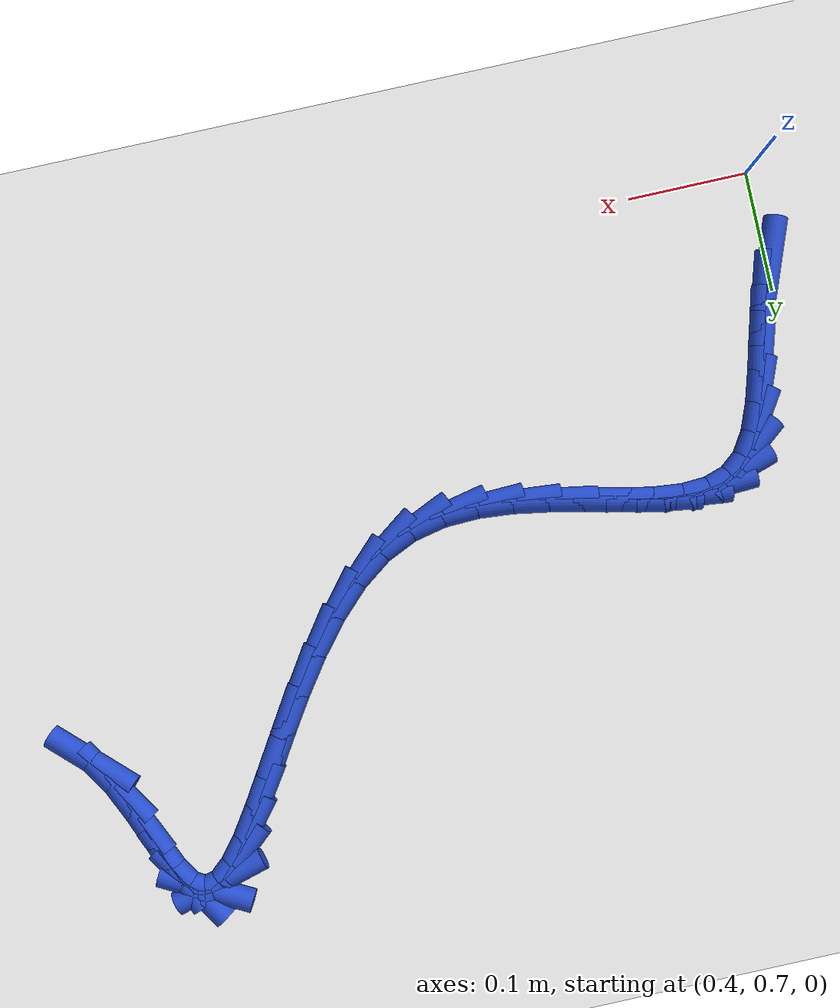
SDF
<sdf version="1.6">
 <world name="default">
  <model name="ground_plane">
   <static>1</static>
   <link name="link">
    <collision name="collision">
     <geometry><plane><normal>0 0 1</normal><size>100 100</size></plane></geometry>
     <surface><friction><ode><mu>100</mu><mu2>50</mu2></ode></friction></surface>
    </collision>
    <visual name="visual">
     <cast_shadows>0</cast_shadows>
     <geometry><plane><normal>0 0 1</normal><size>100 100</size></plane></geometry>
     <material>
      <script><uri>file://media/materials/scripts/gazebo.material</uri><name>Gazebo/WhiteGlow</name></script>
     </material>
    </visual>
   </link>
  </model>
  <model name="line">
   <link name="link_35">
    <pose>0.4008545259742131 0.7804208570294588 0.01 0 1.57 1.2062532085887105</pose>
    <collision name="collision">
     <geometry><cylinder><radius>0.01</radius><length>0.08</length></cylinder></geometry>
    </collision>
    <visual name="visual">
     <material>
      <script><name>Gazebo/Blue</name><uri>file://media/materials/scripts/gazebo.material</uri></script>
     </material>
     <geometry><cylinder><radius>0.01</radius><length>0.08</length></cylinder></geometry>
    </visual>
   </link>
   <link name="link_36">
    <pose>0.411081138819443 0.8072202583912982 0.01 0 1.57 1.2818337409455303</pose>
    <collision name="collision">
     <geometry><cylinder><radius>0.01</radius><length>0.08</length></cylinder></geometry>
    </collision>
    <visual name="visual">
     <material>
      <script><name>Gazebo/Blue</name><uri>file://media/materials/scripts/gazebo.material</uri></script>
     </material>
     <geometry><cylinder><radius>0.01</radius><length>0.08</length></cylinder></geometry>
    </visual>
   </link>
   <link name="link_37">
    <pose>0.41946949430584796 0.8354369606586894 0.01 0 1.57 1.307279557385827</pose>
    <collision name="collision">
     <geometry><cylinder><radius>0.01</radius><length>0.08</length></cylinder></geometry>
    </collision>
    <visual name="visual">
     <material>
      <script><name>Gazebo/Blue</name><uri>file://media/materials/scripts/gazebo.material</uri></script>
     </material>
     <geometry><cylinder><radius>0.01</radius><length>0.08</length></cylinder></geometry>
    </visual>
   </link>
   <link name="link_38">
    <pose>0.427058328923056 0.8635655577290681 0.01 0 1.57 1.2816940469838736</pose>
    <collision name="collision">
     <geometry><cylinder><radius>0.01</radius><length>0.08</length></cylinder></geometry>
    </collision>
    <visual name="visual">
     <material>
      <script><name>Gazebo/Blue</name><uri>file://media/materials/scripts/gazebo.material</uri></script>
     </material>
     <geometry><cylinder><radius>0.01</radius><length>0.08</length></cylinder></geometry>
    </visual>
   </link>
   <link name="link_39">
    <pose>0.4349325172396189 0.8900391674354967 0.01 0 1.57 1.1923782774701637</pose>
    <collision name="collision">
     <geometry><cylinder><radius>0.01</radius><length>0.08</length></cylinder></geometry>
    </collision>
    <visual name="visual">
     <material>
      <script><name>Gazebo/Blue</name><uri>file://media/materials/scripts/gazebo.material</uri></script>
     </material>
     <geometry><cylinder><radius>0.01</radius><length>0.08</length></cylinder></geometry>
    </visual>
   </link>
   <link name="link_40">
    <pose>0.4441769338240876 0.9132909076110352 0.01 0 1.57 1.0059836887501532</pose>
    <collision name="collision">
     <geometry><cylinder><radius>0.01</radius><length>0.08</length></cylinder></geometry>
    </collision>
    <visual name="visual">
     <material>
      <script><name>Gazebo/Blue</name><uri>file://media/materials/scripts/gazebo.material</uri></script>
     </material>
     <geometry><cylinder><radius>0.01</radius><length>0.08</length></cylinder></geometry>
    </visual>
   </link>
   <link name="link_41">
    <pose>0.4558764532450137 0.9317538960887456 0.01 0 1.57 0.6781198555130753</pose>
    <collision name="collision">
     <geometry><cylinder><radius>0.01</radius><length>0.08</length></cylinder></geometry>
    </collision>
    <visual name="visual">
     <material>
      <script><name>Gazebo/Blue</name><uri>file://media/materials/scripts/gazebo.material</uri></script>
     </material>
     <geometry><cylinder><radius>0.01</radius><length>0.08</length></cylinder></geometry>
    </visual>
   </link>
   <link name="link_42">
    <pose>0.47105002976970356 0.9439770686609245 0.01 0 1.57 0.3132557845495781</pose>
    <collision name="collision">
     <geometry><cylinder><radius>0.01</radius><length>0.08</length></cylinder></geometry>
    </collision>
    <visual name="visual">
     <material>
      <script><name>Gazebo/Blue</name><uri>file://media/materials/scripts/gazebo.material</uri></script>
     </material>
     <geometry><cylinder><radius>0.01</radius><length>0.08</length></cylinder></geometry>
    </visual>
   </link>
   <link name="link_43">
    <pose>0.4898332662802066 0.9500613557678835 0.01 0 1.57 0.05268638335929797</pose>
    <collision name="collision">
     <geometry><cylinder><radius>0.01</radius><length>0.08</length></cylinder></geometry>
    </collision>
    <visual name="visual">
     <material>
      <script><name>Gazebo/Blue</name><uri>file://media/materials/scripts/gazebo.material</uri></script>
     </material>
     <geometry><cylinder><radius>0.01</radius><length>0.08</length></cylinder></geometry>
    </visual>
   </link>
   <link name="link_44">
    <pose>0.5117308717341985 0.9512161300966295 0.01 0 1.57 -0.10334899234721864</pose>
    <collision name="collision">
     <geometry><cylinder><radius>0.01</radius><length>0.08</length></cylinder></geometry>
    </collision>
    <visual name="visual">
     <material>
      <script><name>Gazebo/Blue</name><uri>file://media/materials/scripts/gazebo.material</uri></script>
     </material>
     <geometry><cylinder><radius>0.01</radius><length>0.08</length></cylinder></geometry>
    </visual>
   </link>
   <link name="link_45">
    <pose>0.5362339262739055 0.9486747093338458 0.01 0 1.57 -0.18596078595667456</pose>
    <collision name="collision">
     <geometry><cylinder><radius>0.01</radius><length>0.08</length></cylinder></geometry>
    </collision>
    <visual name="visual">
     <material>
      <script><name>Gazebo/Blue</name><uri>file://media/materials/scripts/gazebo.material</uri></script>
     </material>
     <geometry><cylinder><radius>0.01</radius><length>0.08</length></cylinder></geometry>
    </visual>
   </link>
   <link name="link_46">
    <pose>0.5628335100415547 0.9436704111662171 0.01 0 1.57 -0.21765574758407233</pose>
    <collision name="collision">
     <geometry><cylinder><radius>0.01</radius><length>0.08</length></cylinder></geometry>
    </collision>
    <visual name="visual">
     <material>
      <script><name>Gazebo/Blue</name><uri>file://media/materials/scripts/gazebo.material</uri></script>
     </material>
     <geometry><cylinder><radius>0.01</radius><length>0.08</length></cylinder></geometry>
    </visual>
   </link>
   <link name="link_47">
    <pose>0.5910207031793724 0.9374365532804272 0.01 0 1.57 -0.2097482544717887</pose>
    <collision name="collision">
     <geometry><cylinder><radius>0.01</radius><length>0.08</length></cylinder></geometry>
    </collision>
    <visual name="visual">
     <material>
      <script><name>Gazebo/Blue</name><uri>file://media/materials/scripts/gazebo.material</uri></script>
     </material>
     <geometry><cylinder><radius>0.01</radius><length>0.08</length></cylinder></geometry>
    </visual>
   </link>
   <link name="link_48">
    <pose>0.6202865858295856 0.9312064533631601 0.01 0 1.57 -0.16581437649481212</pose>
    <collision name="collision">
     <geometry><cylinder><radius>0.01</radius><length>0.08</length></cylinder></geometry>
    </collision>
    <visual name="visual">
     <material>
      <script><name>Gazebo/Blue</name><uri>file://media/materials/scripts/gazebo.material</uri></script>
     </material>
     <geometry><cylinder><radius>0.01</radius><length>0.08</length></cylinder></geometry>
    </visual>
   </link>
   <link name="link_49">
    <pose>0.6501222381344205 0.9262134291010994 0.01 0 1.57 -0.08417939653752603</pose>
    <collision name="collision">
     <geometry><cylinder><radius>0.01</radius><length>0.08</length></cylinder></geometry>
    </collision>
    <visual name="visual">
     <material>
      <script><name>Gazebo/Blue</name><uri>file://media/materials/scripts/gazebo.material</uri></script>
     </material>
     <geometry><cylinder><radius>0.01</radius><length>0.08</length></cylinder></geometry>
    </visual>
   </link>
   <link name="link_50">
    <pose>0.6800187402361043 0.9236907981809298 0.01 0 1.57 0.04008523924446155</pose>
    <collision name="collision">
     <geometry><cylinder><radius>0.01</radius><length>0.08</length></cylinder></geometry>
    </collision>
    <visual name="visual">
     <material>
      <script><name>Gazebo/Blue</name><uri>file://media/materials/scripts/gazebo.material</uri></script>
     </material>
     <geometry><cylinder><radius>0.01</radius><length>0.08</length></cylinder></geometry>
    </visual>
   </link>
   <link name="link_51">
    <pose>0.7094671722768634 0.9248718782893348 0.01 0 1.57 0.21152282106985118</pose>
    <collision name="collision">
     <geometry><cylinder><radius>0.01</radius><length>0.08</length></cylinder></geometry>
    </collision>
    <visual name="visual">
     <material>
      <script><name>Gazebo/Blue</name><uri>file://media/materials/scripts/gazebo.material</uri></script>
     </material>
     <geometry><cylinder><radius>0.01</radius><length>0.08</length></cylinder></geometry>
    </visual>
   </link>
   <link name="link_52">
    <pose>0.7379586143989245 0.9309899871129986 0.01 0 1.57 0.42581569554812954</pose>
    <collision name="collision">
     <geometry><cylinder><radius>0.01</radius><length>0.08</length></cylinder></geometry>
    </collision>
    <visual name="visual">
     <material>
      <script><name>Gazebo/Blue</name><uri>file://media/materials/scripts/gazebo.material</uri></script>
     </material>
     <geometry><cylinder><radius>0.01</radius><length>0.08</length></cylinder></geometry>
    </visual>
   </link>
   <link name="link_53">
    <pose>0.764990262229206 0.9432506313668181 0.01 0 1.57 0.6314356508092364</pose>
    <collision name="collision">
     <geometry><cylinder><radius>0.01</radius><length>0.08</length></cylinder></geometry>
    </collision>
    <visual name="visual">
     <material>
      <script><name>Gazebo/Blue</name><uri>file://media/materials/scripts/gazebo.material</uri></script>
     </material>
     <geometry><cylinder><radius>0.01</radius><length>0.08</length></cylinder></geometry>
    </visual>
   </link>
   <link name="link_54">
    <pose>0.7903008922017769 0.9617606972391546 0.01 0 1.57 0.7808220849235016</pose>
    <collision name="collision">
     <geometry><cylinder><radius>0.01</radius><length>0.08</length></cylinder></geometry>
    </collision>
    <visual name="visual">
     <material>
      <script><name>Gazebo/Blue</name><uri>file://media/materials/scripts/gazebo.material</uri></script>
     </material>
     <geometry><cylinder><radius>0.01</radius><length>0.08</length></cylinder></geometry>
    </visual>
   </link>
   <link name="link_55">
    <pose>0.8139453433014411 0.9851897348567823 0.01 0 1.57 0.8844302414726082</pose>
    <collision name="collision">
     <geometry><cylinder><radius>0.01</radius><length>0.08</length></cylinder></geometry>
    </collision>
    <visual name="visual">
     <material>
      <script><name>Gazebo/Blue</name><uri>file://media/materials/scripts/gazebo.material</uri></script>
     </material>
     <geometry><cylinder><radius>0.01</radius><length>0.08</length></cylinder></geometry>
    </visual>
   </link>
   <link name="link_56">
    <pose>0.8359998044002391 1.0121102029233804 0.01 0 1.57 0.9542679930613137</pose>
    <collision name="collision">
     <geometry><cylinder><radius>0.01</radius><length>0.08</length></cylinder></geometry>
    </collision>
    <visual name="visual">
     <material>
      <script><name>Gazebo/Blue</name><uri>file://media/materials/scripts/gazebo.material</uri></script>
     </material>
     <geometry><cylinder><radius>0.01</radius><length>0.08</length></cylinder></geometry>
    </visual>
   </link>
   <link name="link_57">
    <pose>0.856540464370212 1.0410945601426285 0.01 0 1.57 0.9979990848718903</pose>
    <collision name="collision">
     <geometry><cylinder><radius>0.01</radius><length>0.08</length></cylinder></geometry>
    </collision>
    <visual name="visual">
     <material>
      <script><name>Gazebo/Blue</name><uri>file://media/materials/scripts/gazebo.material</uri></script>
     </material>
     <geometry><cylinder><radius>0.01</radius><length>0.08</length></cylinder></geometry>
    </visual>
   </link>
   <link name="link_58">
    <pose>0.8756435120834011 1.070715265218205 0.01 0 1.57 1.0191316229129577</pose>
    <collision name="collision">
     <geometry><cylinder><radius>0.01</radius><length>0.08</length></cylinder></geometry>
    </collision>
    <visual name="visual">
     <material>
      <script><name>Gazebo/Blue</name><uri>file://media/materials/scripts/gazebo.material</uri></script>
     </material>
     <geometry><cylinder><radius>0.01</radius><length>0.08</length></cylinder></geometry>
    </visual>
   </link>
   <link name="link_59">
    <pose>0.8933851364118472 1.0995447768537903 0.01 0 1.57 1.016949405440842</pose>
    <collision name="collision">
     <geometry><cylinder><radius>0.01</radius><length>0.08</length></cylinder></geometry>
    </collision>
    <visual name="visual">
     <material>
      <script><name>Gazebo/Blue</name><uri>file://media/materials/scripts/gazebo.material</uri></script>
     </material>
     <geometry><cylinder><radius>0.01</radius><length>0.08</length></cylinder></geometry>
    </visual>
   </link>
   <link name="link_60">
    <pose>0.9098415262275917 1.1261555537530628 0.01 0 1.57 0.9846749224691254</pose>
    <collision name="collision">
     <geometry><cylinder><radius>0.01</radius><length>0.08</length></cylinder></geometry>
    </collision>
    <visual name="visual">
     <material>
      <script><name>Gazebo/Blue</name><uri>file://media/materials/scripts/gazebo.material</uri></script>
     </material>
     <geometry><cylinder><radius>0.01</radius><length>0.08</length></cylinder></geometry>
    </visual>
   </link>
   <link name="link_61">
    <pose>0.9250888704026756 1.149120054619702 0.01 0 1.57 0.9028422575319455</pose>
    <collision name="collision">
     <geometry><cylinder><radius>0.01</radius><length>0.08</length></cylinder></geometry>
    </collision>
    <visual name="visual">
     <material>
      <script><name>Gazebo/Blue</name><uri>file://media/materials/scripts/gazebo.material</uri></script>
     </material>
     <geometry><cylinder><radius>0.01</radius><length>0.08</length></cylinder></geometry>
    </visual>
   </link>
   <link name="link_62">
    <pose>0.9392033578091397 1.1670107381573873 0.01 0 1.57 0.7172547759534537</pose>
    <collision name="collision">
     <geometry><cylinder><radius>0.01</radius><length>0.08</length></cylinder></geometry>
    </collision>
    <visual name="visual">
     <material>
      <script><name>Gazebo/Blue</name><uri>file://media/materials/scripts/gazebo.material</uri></script>
     </material>
     <geometry><cylinder><radius>0.01</radius><length>0.08</length></cylinder></geometry>
    </visual>
   </link>
   <link name="link_63">
    <pose>0.952261177319025 1.1784000630697977 0.01 0 1.57 0.2790463491939582</pose>
    <collision name="collision">
     <geometry><cylinder><radius>0.01</radius><length>0.08</length></cylinder></geometry>
    </collision>
    <visual name="visual">
     <material>
      <script><name>Gazebo/Blue</name><uri>file://media/materials/scripts/gazebo.material</uri></script>
     </material>
     <geometry><cylinder><radius>0.01</radius><length>0.08</length></cylinder></geometry>
    </visual>
   </link>
   <link name="link_64">
    <pose>0.9643385178043727 1.1818604880606123 0.01 0 1.57 -0.4855610881498735</pose>
    <collision name="collision">
     <geometry><cylinder><radius>0.01</radius><length>0.08</length></cylinder></geometry>
    </collision>
    <visual name="visual">
     <material>
      <script><name>Gazebo/Blue</name><uri>file://media/materials/scripts/gazebo.material</uri></script>
     </material>
     <geometry><cylinder><radius>0.01</radius><length>0.08</length></cylinder></geometry>
    </visual>
   </link>
   <link name="link_65">
    <pose>0.9755115681372244 1.1759644718335114 0.01 0 1.57 -0.9906905959709252</pose>
    <collision name="collision">
     <geometry><cylinder><radius>0.01</radius><length>0.08</length></cylinder></geometry>
    </collision>
    <visual name="visual">
     <material>
      <script><name>Gazebo/Blue</name><uri>file://media/materials/scripts/gazebo.material</uri></script>
     </material>
     <geometry><cylinder><radius>0.01</radius><length>0.08</length></cylinder></geometry>
    </visual>
   </link>
   <link name="link_66">
    <pose>0.9859562282229589 1.1600262021842145 0.01 0 1.57 -1.1520627366846383</pose>
    <collision name="collision">
     <geometry><cylinder><radius>0.01</radius><length>0.08</length></cylinder></geometry>
    </collision>
    <visual name="visual">
     <material>
      <script><name>Gazebo/Blue</name><uri>file://media/materials/scripts/gazebo.material</uri></script>
     </material>
     <geometry><cylinder><radius>0.01</radius><length>0.08</length></cylinder></geometry>
    </visual>
   </link>
   <link name="link_67">
    <pose>0.9963067497824023 1.1367694482207973 0.01 0 1.57 -1.1815532201795544</pose>
    <collision name="collision">
     <geometry><cylinder><radius>0.01</radius><length>0.08</length></cylinder></geometry>
    </collision>
    <visual name="visual">
     <material>
      <script><name>Gazebo/Blue</name><uri>file://media/materials/scripts/gazebo.material</uri></script>
     </material>
     <geometry><cylinder><radius>0.01</radius><length>0.08</length></cylinder></geometry>
    </visual>
   </link>
   <link name="link_68">
    <pose>1.0073290042139862 1.1098970697366533 0.01 0 1.57 -1.1353907675519321</pose>
    <collision name="collision">
     <geometry><cylinder><radius>0.01</radius><length>0.08</length></cylinder></geometry>
    </collision>
    <visual name="visual">
     <material>
      <script><name>Gazebo/Blue</name><uri>file://media/materials/scripts/gazebo.material</uri></script>
     </material>
     <geometry><cylinder><radius>0.01</radius><length>0.08</length></cylinder></geometry>
    </visual>
   </link>
   <link name="link_69">
    <pose>1.0197888743236885 1.0831120113834767 0.01 0 1.57 -1.0031923334823036</pose>
    <collision name="collision">
     <geometry><cylinder><radius>0.01</radius><length>0.08</length></cylinder></geometry>
    </collision>
    <visual name="visual">
     <material>
      <script><name>Gazebo/Blue</name><uri>file://media/materials/scripts/gazebo.material</uri></script>
     </material>
     <geometry><cylinder><radius>0.01</radius><length>0.08</length></cylinder></geometry>
    </visual>
   </link>
   <link name="link_70">
    <pose>1.034451697675095 1.0601148714902073 0.01 0 1.57 -0.7633360362596646</pose>
    <collision name="collision">
     <geometry><cylinder><radius>0.01</radius><length>0.08</length></cylinder></geometry>
    </collision>
    <visual name="visual">
     <material>
      <script><name>Gazebo/Blue</name><uri>file://media/materials/scripts/gazebo.material</uri></script>
     </material>
     <geometry><cylinder><radius>0.01</radius><length>0.08</length></cylinder></geometry>
    </visual>
   </link>
  </model>
 </world>
</sdf>
